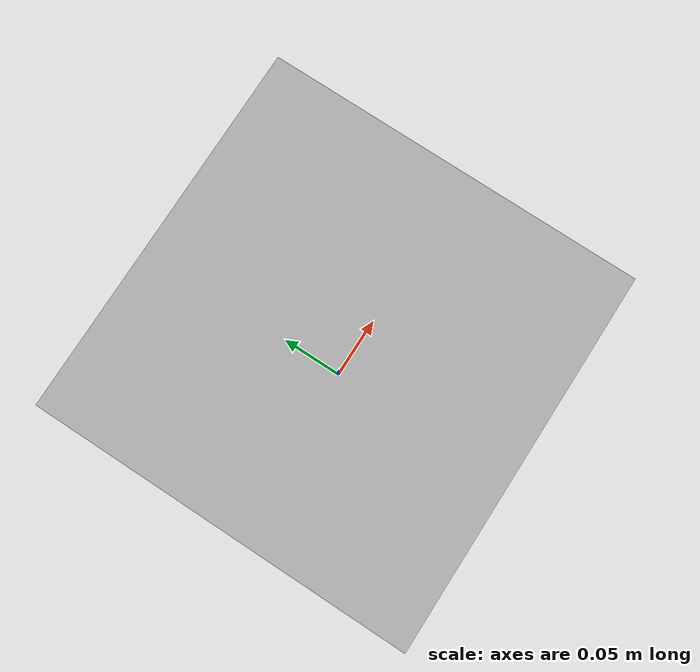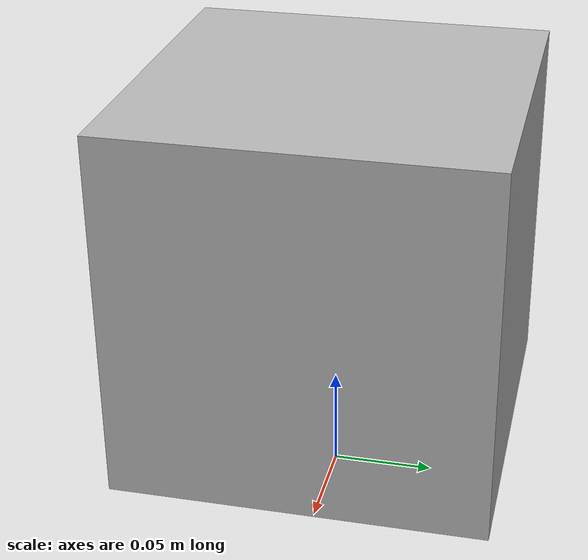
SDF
<?xml version="1.0"?>
<!-- qr_right — 把 QR 码 PNG 贴到一个小立方体的各面, 立在巡线路口供车载相机识别。
     纯视觉(无碰撞), 不挡车; 立方体四个侧面都贴同一张码, 任意朝向都能被看到。
     内容: path:right 原地右转直到重新发现线。 -->
<sdf version="1.6">
  <model name="qr_right">
    <static>true</static>
    <link name="link">
      <visual name="qr">
        <pose>0 0 0.12 0 0 0</pose>
        <geometry><box><size>0.18 0.18 0.18</size></box></geometry>
        <material>
          <script>
            <uri>model://qr_right/materials/scripts</uri>
            <uri>model://qr_right/materials/textures</uri>
            <name>QR/Right</name>
          </script>
        </material>
      </visual>
    </link>
  </model>
</sdf>
